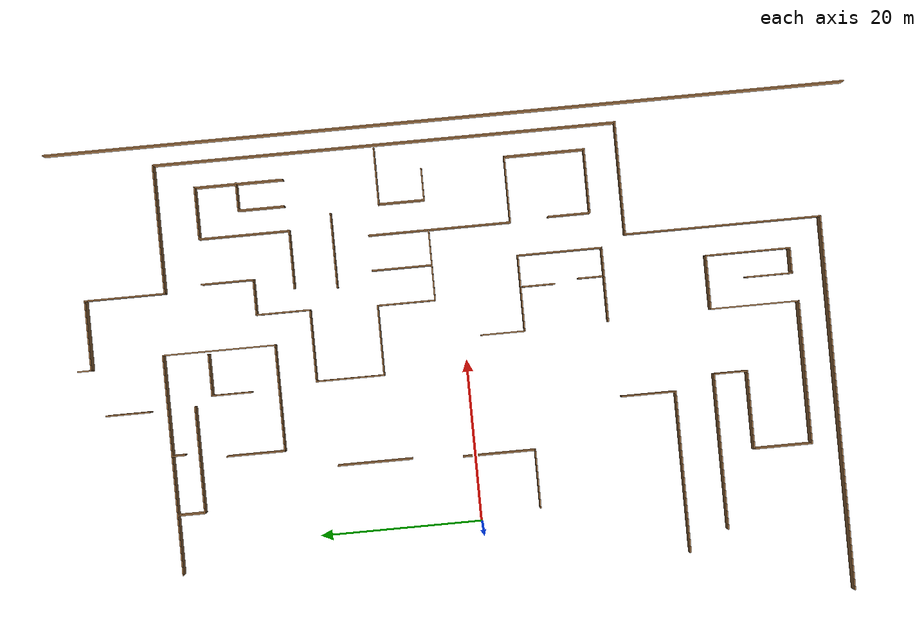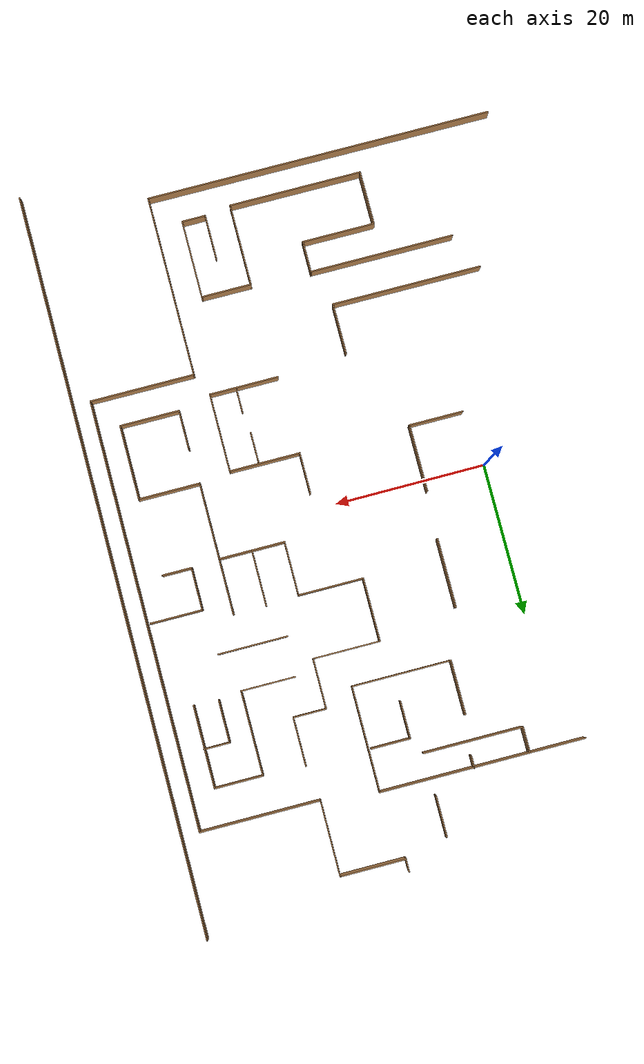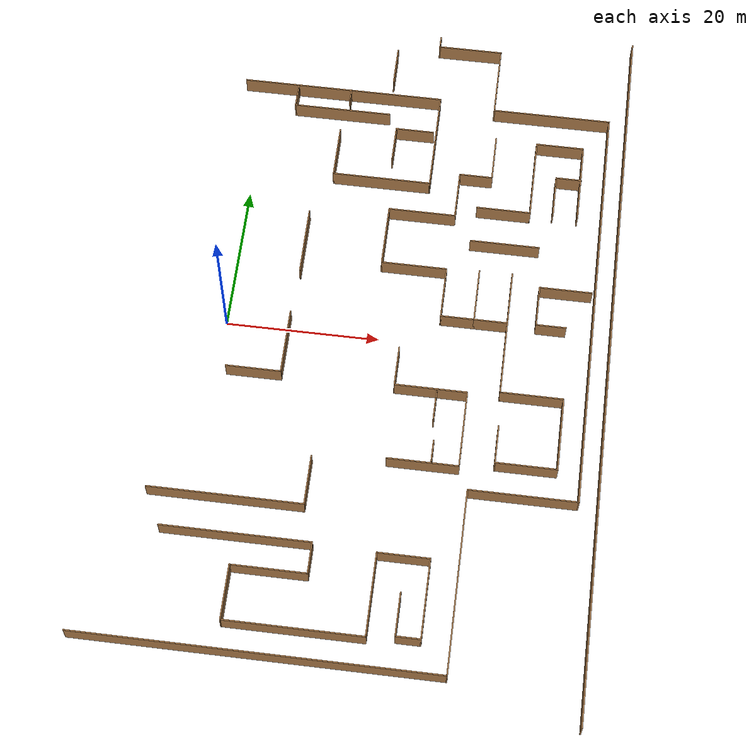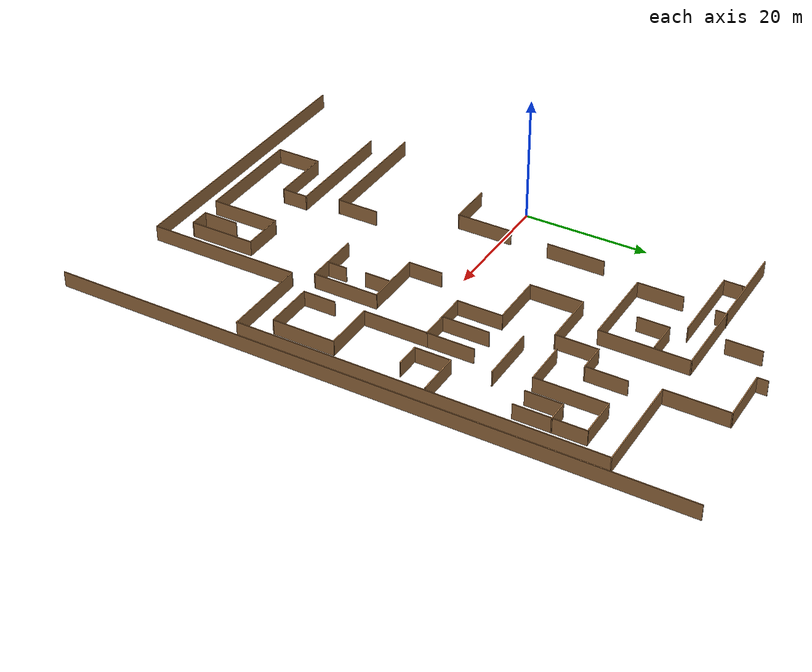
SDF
<sdf version="1.7">
 <model name="model4">
  <pose>0.113714 0.358597 0 0 -0 0</pose>
  <link name="Wall_104">
   <collision name="Wall_104_Collision">
    <geometry><box><size>5.5 0.15 2.5</size></box></geometry>
    <pose>0 0 1.25 0 -0 0</pose>
   </collision>
   <visual name="Wall_104_Visual">
    <pose>0 0 1.25 0 -0 0</pose>
    <geometry><box><size>5.5 0.15 2.5</size></box></geometry>
    <material>
     <script><uri>file://media/materials/scripts/gazebo.material</uri><name>Gazebo/Wood</name></script>
     <ambient>1 1 1 1</ambient>
    </material>
    <meta><layer>0</layer></meta>
   </visual>
   <pose>17.1753 41.7624 0 0 -0 -1.5708</pose>
  </link>
  <link name="Wall_111">
   <collision name="Wall_111_Collision">
    <geometry><box><size>7.25 0.15 2.5</size></box></geometry>
    <pose>0 0 1.25 0 -0 0</pose>
   </collision>
   <visual name="Wall_111_Visual">
    <pose>0 0 1.25 0 -0 0</pose>
    <geometry><box><size>7.25 0.15 2.5</size></box></geometry>
    <material>
     <script><uri>file://media/materials/scripts/gazebo.material</uri><name>Gazebo/Wood</name></script>
     <ambient>1 1 1 1</ambient>
    </material>
    <meta><layer>0</layer></meta>
   </visual>
   <pose>10.8691 26.5423 0 0 -0 -1.5708</pose>
  </link>
  <link name="Wall_112">
   <collision name="Wall_112_Collision">
    <geometry><box><size>13.25 0.15 2.5</size></box></geometry>
    <pose>0 0 1.25 0 -0 0</pose>
   </collision>
   <visual name="Wall_112_Visual">
    <pose>0 0 1.25 0 -0 0</pose>
    <geometry><box><size>13.25 0.15 2.5</size></box></geometry>
    <material>
     <script><uri>file://media/materials/scripts/gazebo.material</uri><name>Gazebo/Wood</name></script>
     <ambient>1 1 1 1</ambient>
    </material>
    <meta><layer>0</layer></meta>
   </visual>
   <pose>17.4191 22.9923 0 0 -0 0</pose>
  </link>
  <link name="Wall_113">
   <collision name="Wall_113_Collision">
    <geometry><box><size>14 0.15 2.5</size></box></geometry>
    <pose>0 0 1.25 0 -0 0</pose>
   </collision>
   <visual name="Wall_113_Visual">
    <pose>0 0 1.25 0 -0 0</pose>
    <geometry><box><size>14 0.15 2.5</size></box></geometry>
    <material>
     <script><uri>file://media/materials/scripts/gazebo.material</uri><name>Gazebo/Wood</name></script>
     <ambient>1 1 1 1</ambient>
    </material>
    <meta><layer>0</layer></meta>
   </visual>
   <pose>23.9691 29.9173 0 0 -0 1.5708</pose>
  </link>
  <link name="Wall_114">
   <collision name="Wall_114_Collision">
    <geometry><box><size>27.25 0.15 2.5</size></box></geometry>
    <pose>0 0 1.25 0 -0 0</pose>
   </collision>
   <visual name="Wall_114_Visual">
    <pose>0 0 1.25 0 -0 0</pose>
    <geometry><box><size>27.25 0.15 2.5</size></box></geometry>
    <material>
     <script><uri>file://media/materials/scripts/gazebo.material</uri><name>Gazebo/Wood</name></script>
     <ambient>1 1 1 1</ambient>
    </material>
    <meta><layer>0</layer></meta>
   </visual>
   <pose>10.4191 36.8423 0 0 -0 3.14159</pose>
  </link>
  <link name="Wall_117">
   <collision name="Wall_117_Collision">
    <geometry><box><size>3 0.15 2.5</size></box></geometry>
    <pose>0 0 1.25 0 -0 0</pose>
   </collision>
   <visual name="Wall_117_Visual">
    <pose>0 0 1.25 0 -0 0</pose>
    <geometry><box><size>3 0.15 2.5</size></box></geometry>
    <material>
     <script><uri>file://media/materials/scripts/gazebo.material</uri><name>Gazebo/Wood</name></script>
     <ambient>1 1 1 1</ambient>
    </material>
    <meta><layer>0</layer></meta>
   </visual>
   <pose>4.18847 34.9191 0 0 -0 -1.5708</pose>
  </link>
  <link name="Wall_118">
   <collision name="Wall_118_Collision">
    <geometry><box><size>13.25 0.15 2.5</size></box></geometry>
    <pose>0 0 1.25 0 -0 0</pose>
   </collision>
   <visual name="Wall_118_Visual">
    <pose>0 0 1.25 0 -0 0</pose>
    <geometry><box><size>13.25 0.15 2.5</size></box></geometry>
    <material>
     <script><uri>file://media/materials/scripts/gazebo.material</uri><name>Gazebo/Wood</name></script>
     <ambient>1 1 1 1</ambient>
    </material>
    <meta><layer>0</layer></meta>
   </visual>
   <pose>10.7385 33.4941 0 0 -0 0</pose>
  </link>
  <link name="Wall_121">
   <collision name="Wall_121_Collision">
    <geometry><box><size>1.75 0.15 2.5</size></box></geometry>
    <pose>0 0 1.25 0 -0 0</pose>
   </collision>
   <visual name="Wall_121_Visual">
    <pose>0 0 1.25 0 -0 0</pose>
    <geometry><box><size>1.75 0.15 2.5</size></box></geometry>
    <material>
     <script><uri>file://media/materials/scripts/gazebo.material</uri><name>Gazebo/Wood</name></script>
     <ambient>1 1 1 1</ambient>
    </material>
    <meta><layer>0</layer></meta>
   </visual>
   <pose>11.5289 36.1088 0 0 -0 -1.5708</pose>
  </link>
  <link name="Wall_123">
   <collision name="Wall_123_Collision">
    <geometry><box><size>0.5 0.15 2.5</size></box></geometry>
    <pose>0 0 1.25 0 -0 0</pose>
   </collision>
   <visual name="Wall_123_Visual">
    <pose>0 0 1.25 0 -0 0</pose>
    <geometry><box><size>0.5 0.15 2.5</size></box></geometry>
    <material>
     <script><uri>file://media/materials/scripts/gazebo.material</uri><name>Gazebo/Wood</name></script>
     <ambient>1 1 1 1</ambient>
    </material>
    <meta><layer>0</layer></meta>
   </visual>
   <pose>4.18847 36.5191 0 0 -0 1.5708</pose>
  </link>
  <link name="Wall_125">
   <collision name="Wall_125_Collision">
    <geometry><box><size>5.25 0.15 2.5</size></box></geometry>
    <pose>0 0 1.25 0 -0 0</pose>
   </collision>
   <visual name="Wall_125_Visual">
    <pose>0 0 1.25 0 -0 0</pose>
    <geometry><box><size>5.25 0.15 2.5</size></box></geometry>
    <material>
     <script><uri>file://media/materials/scripts/gazebo.material</uri><name>Gazebo/Wood</name></script>
     <ambient>1 1 1 1</ambient>
    </material>
    <meta><layer>0</layer></meta>
   </visual>
   <pose>21.0246 31.2623 0 0 -0 3.14159</pose>
  </link>
  <link name="Wall_126">
   <collision name="Wall_126_Collision">
    <geometry><box><size>5 0.15 2.5</size></box></geometry>
    <pose>0 0 1.25 0 -0 0</pose>
   </collision>
   <visual name="Wall_126_Visual">
    <pose>0 0 1.25 0 -0 0</pose>
    <geometry><box><size>5 0.15 2.5</size></box></geometry>
    <material>
     <script><uri>file://media/materials/scripts/gazebo.material</uri><name>Gazebo/Wood</name></script>
     <ambient>1 1 1 1</ambient>
    </material>
    <meta><layer>0</layer></meta>
   </visual>
   <pose>18.4746 28.8373 0 0 -0 -1.5708</pose>
  </link>
  <link name="Wall_143">
   <collision name="Wall_143_Collision">
    <geometry><box><size>19.25 0.15 2.5</size></box></geometry>
    <pose>0 0 1.25 0 -0 0</pose>
   </collision>
   <visual name="Wall_143_Visual">
    <pose>0 0 1.25 0 -0 0</pose>
    <geometry><box><size>19.25 0.15 2.5</size></box></geometry>
    <material>
     <script><uri>file://media/materials/scripts/gazebo.material</uri><name>Gazebo/Wood</name></script>
     <ambient>1 1 1 1</ambient>
    </material>
    <meta><layer>0</layer></meta>
   </visual>
   <pose>5.83343 -30.4723 0 0 -0 0</pose>
  </link>
  <link name="Wall_144">
   <collision name="Wall_144_Collision">
    <geometry><box><size>4.25 0.15 2.5</size></box></geometry>
    <pose>0 0 1.25 0 -0 0</pose>
   </collision>
   <visual name="Wall_144_Visual">
    <pose>0 0 1.25 0 -0 0</pose>
    <geometry><box><size>4.25 0.15 2.5</size></box></geometry>
    <material>
     <script><uri>file://media/materials/scripts/gazebo.material</uri><name>Gazebo/Wood</name></script>
     <ambient>1 1 1 1</ambient>
    </material>
    <meta><layer>0</layer></meta>
   </visual>
   <pose>15.3834 -32.5223 0 0 -0 -1.5708</pose>
  </link>
  <link name="Wall_145">
   <collision name="Wall_145_Collision">
    <geometry><box><size>9.75 0.15 2.5</size></box></geometry>
    <pose>0 0 1.25 0 -0 0</pose>
   </collision>
   <visual name="Wall_145_Visual">
    <pose>0 0 1.25 0 -0 0</pose>
    <geometry><box><size>9.75 0.15 2.5</size></box></geometry>
    <material>
     <script><uri>file://media/materials/scripts/gazebo.material</uri><name>Gazebo/Wood</name></script>
     <ambient>1 1 1 1</ambient>
    </material>
    <meta><layer>0</layer></meta>
   </visual>
   <pose>10.5834 -34.5723 0 0 -0 3.14159</pose>
  </link>
  <link name="Wall_146">
   <collision name="Wall_146_Collision">
    <geometry><box><size>7.25 0.15 2.5</size></box></geometry>
    <pose>0 0 1.25 0 -0 0</pose>
   </collision>
   <visual name="Wall_146_Visual">
    <pose>0 0 1.25 0 -0 0</pose>
    <geometry><box><size>7.25 0.15 2.5</size></box></geometry>
    <material>
     <script><uri>file://media/materials/scripts/gazebo.material</uri><name>Gazebo/Wood</name></script>
     <ambient>1 1 1 1</ambient>
    </material>
    <meta><layer>0</layer></meta>
   </visual>
   <pose>5.78343 -38.1223 0 0 -0 -1.5708</pose>
  </link>
  <link name="Wall_147">
   <collision name="Wall_147_Collision">
    <geometry><box><size>17.75 0.15 2.5</size></box></geometry>
    <pose>0 0 1.25 0 -0 0</pose>
   </collision>
   <visual name="Wall_147_Visual">
    <pose>0 0 1.25 0 -0 0</pose>
    <geometry><box><size>17.75 0.15 2.5</size></box></geometry>
    <material>
     <script><uri>file://media/materials/scripts/gazebo.material</uri><name>Gazebo/Wood</name></script>
     <ambient>1 1 1 1</ambient>
    </material>
    <meta><layer>0</layer></meta>
   </visual>
   <pose>14.5834 -41.6723 0 0 -0 0</pose>
  </link>
  <link name="Wall_148">
   <collision name="Wall_148_Collision">
    <geometry><box><size>11 0.15 2.5</size></box></geometry>
    <pose>0 0 1.25 0 -0 0</pose>
   </collision>
   <visual name="Wall_148_Visual">
    <pose>0 0 1.25 0 -0 0</pose>
    <geometry><box><size>11 0.15 2.5</size></box></geometry>
    <material>
     <script><uri>file://media/materials/scripts/gazebo.material</uri><name>Gazebo/Wood</name></script>
     <ambient>1 1 1 1</ambient>
    </material>
    <meta><layer>0</layer></meta>
   </visual>
   <pose>23.3834 -36.2473 0 0 -0 1.5708</pose>
  </link>
  <link name="Wall_149">
   <collision name="Wall_149_Collision">
    <geometry><box><size>6.75 0.15 2.5</size></box></geometry>
    <pose>0 0 1.25 0 -0 0</pose>
   </collision>
   <visual name="Wall_149_Visual">
    <pose>0 0 1.25 0 -0 0</pose>
    <geometry><box><size>6.75 0.15 2.5</size></box></geometry>
    <material>
     <script><uri>file://media/materials/scripts/gazebo.material</uri><name>Gazebo/Wood</name></script>
     <ambient>1 1 1 1</ambient>
    </material>
    <meta><layer>0</layer></meta>
   </visual>
   <pose>26.6834 -30.8223 0 0 -0 0</pose>
  </link>
  <link name="Wall_150">
   <collision name="Wall_150_Collision">
    <geometry><box><size>10.5 0.15 2.5</size></box></geometry>
    <pose>0 0 1.25 0 -0 0</pose>
   </collision>
   <visual name="Wall_150_Visual">
    <pose>0 0 1.25 0 -0 0</pose>
    <geometry><box><size>10.5 0.15 2.5</size></box></geometry>
    <material>
     <script><uri>file://media/materials/scripts/gazebo.material</uri><name>Gazebo/Wood</name></script>
     <ambient>1 1 1 1</ambient>
    </material>
    <meta><layer>0</layer></meta>
   </visual>
   <pose>29.9834 -35.9973 0 0 -0 -1.5708</pose>
  </link>
  <link name="Wall_151">
   <collision name="Wall_151_Collision">
    <geometry><box><size>3.25 0.15 2.5</size></box></geometry>
    <pose>0 0 1.25 0 -0 0</pose>
   </collision>
   <visual name="Wall_151_Visual">
    <pose>0 0 1.25 0 -0 0</pose>
    <geometry><box><size>3.25 0.15 2.5</size></box></geometry>
    <material>
     <script><uri>file://media/materials/scripts/gazebo.material</uri><name>Gazebo/Wood</name></script>
     <ambient>1 1 1 1</ambient>
    </material>
    <meta><layer>0</layer></meta>
   </visual>
   <pose>28.4334 -41.1723 0 0 -0 3.14159</pose>
  </link>
  <link name="Wall_152">
   <collision name="Wall_152_Collision">
    <geometry><box><size>5.75 0.15 2.5</size></box></geometry>
    <pose>0 0 1.25 0 -0 0</pose>
   </collision>
   <visual name="Wall_152_Visual">
    <pose>0 0 1.25 0 -0 0</pose>
    <geometry><box><size>5.75 0.15 2.5</size></box></geometry>
    <material>
     <script><uri>file://media/materials/scripts/gazebo.material</uri><name>Gazebo/Wood</name></script>
     <ambient>1 1 1 1</ambient>
    </material>
    <meta><layer>0</layer></meta>
   </visual>
   <pose>26.8834 -38.3723 0 0 -0 1.5708</pose>
  </link>
  <link name="Wall_160">
   <collision name="Wall_160_Collision">
    <geometry><box><size>20 0.15 2.5</size></box></geometry>
    <pose>0 0 1.25 0 -0 0</pose>
   </collision>
   <visual name="Wall_160_Visual">
    <pose>0 0 1.25 0 -0 0</pose>
    <geometry><box><size>20 0.15 2.5</size></box></geometry>
    <material>
     <script><uri>file://media/materials/scripts/gazebo.material</uri><name>Gazebo/Wood</name></script>
     <ambient>1 1 1 1</ambient>
    </material>
    <meta><layer>0</layer></meta>
   </visual>
   <pose>3.76164 -25.5787 0 0 -0 0</pose>
  </link>
  <link name="Wall_161">
   <collision name="Wall_161_Collision">
    <geometry><box><size>6.75 0.15 2.5</size></box></geometry>
    <pose>0 0 1.25 0 -0 0</pose>
   </collision>
   <visual name="Wall_161_Visual">
    <pose>0 0 1.25 0 -0 0</pose>
    <geometry><box><size>6.75 0.15 2.5</size></box></geometry>
    <material>
     <script><uri>file://media/materials/scripts/gazebo.material</uri><name>Gazebo/Wood</name></script>
     <ambient>1 1 1 1</ambient>
    </material>
    <meta><layer>0</layer></meta>
   </visual>
   <pose>13.6866 -22.2787 0 0 -0 1.5708</pose>
  </link>
  <link name="Wall_163">
   <collision name="Wall_163_Collision">
    <geometry><box><size>5.5 0.15 2.5</size></box></geometry>
    <pose>0 0 1.25 0 -0 0</pose>
   </collision>
   <visual name="Wall_163_Visual">
    <pose>0 0 1.25 0 -0 0</pose>
    <geometry><box><size>5.5 0.15 2.5</size></box></geometry>
    <material>
     <script><uri>file://media/materials/scripts/gazebo.material</uri><name>Gazebo/Wood</name></script>
     <ambient>1 1 1 1</ambient>
    </material>
    <meta><layer>0</layer></meta>
   </visual>
   <pose>22.8218 -5.10322 0 0 -0 -1.5708</pose>
  </link>
  <link name="Wall_164">
   <collision name="Wall_164_Collision">
    <geometry><box><size>9.5 0.15 2.5</size></box></geometry>
    <pose>0 0 1.25 0 -0 0</pose>
   </collision>
   <visual name="Wall_164_Visual">
    <pose>0 0 1.25 0 -0 0</pose>
    <geometry><box><size>9.5 0.15 2.5</size></box></geometry>
    <material>
     <script><uri>file://media/materials/scripts/gazebo.material</uri><name>Gazebo/Wood</name></script>
     <ambient>1 1 1 1</ambient>
    </material>
    <meta><layer>0</layer></meta>
   </visual>
   <pose>27.4968 -7.77822 0 0 -0 0</pose>
  </link>
  <link name="Wall_165">
   <collision name="Wall_165_Collision">
    <geometry><box><size>10.5 0.15 2.5</size></box></geometry>
    <pose>0 0 1.25 0 -0 0</pose>
   </collision>
   <visual name="Wall_165_Visual">
    <pose>0 0 1.25 0 -0 0</pose>
    <geometry><box><size>10.5 0.15 2.5</size></box></geometry>
    <material>
     <script><uri>file://media/materials/scripts/gazebo.material</uri><name>Gazebo/Wood</name></script>
     <ambient>1 1 1 1</ambient>
    </material>
    <meta><layer>0</layer></meta>
   </visual>
   <pose>32.1718 -12.9532 0 0 -0 -1.5708</pose>
  </link>
  <link name="Wall_166">
   <collision name="Wall_166_Collision">
    <geometry><box><size>9.25 0.15 2.5</size></box></geometry>
    <pose>0 0 1.25 0 -0 0</pose>
   </collision>
   <visual name="Wall_166_Visual">
    <pose>0 0 1.25 0 -0 0</pose>
    <geometry><box><size>9.25 0.15 2.5</size></box></geometry>
    <material>
     <script><uri>file://media/materials/scripts/gazebo.material</uri><name>Gazebo/Wood</name></script>
     <ambient>1 1 1 1</ambient>
    </material>
    <meta><layer>0</layer></meta>
   </visual>
   <pose>27.6218 -18.1282 0 0 -0 3.14159</pose>
  </link>
  <link name="Wall_168">
   <collision name="Wall_168_Collision">
    <geometry><box><size>4 0.15 2.5</size></box></geometry>
    <pose>0 0 1.25 0 -0 0</pose>
   </collision>
   <visual name="Wall_168_Visual">
    <pose>0 0 1.25 0 -0 0</pose>
    <geometry><box><size>4 0.15 2.5</size></box></geometry>
    <material>
     <script><uri>file://media/materials/scripts/gazebo.material</uri><name>Gazebo/Wood</name></script>
     <ambient>1 1 1 1</ambient>
    </material>
    <meta><layer>0</layer></meta>
   </visual>
   <pose>28.28 -9.99968 0 0 -0 -1.5708</pose>
  </link>
  <link name="Wall_170">
   <collision name="Wall_170_Collision">
    <geometry><box><size>3 0.15 2.5</size></box></geometry>
    <pose>0 0 1.25 0 -0 0</pose>
   </collision>
   <visual name="Wall_170_Visual">
    <pose>0 0 1.25 0 -0 0</pose>
    <geometry><box><size>3 0.15 2.5</size></box></geometry>
    <material>
     <script><uri>file://media/materials/scripts/gazebo.material</uri><name>Gazebo/Wood</name></script>
     <ambient>1 1 1 1</ambient>
    </material>
    <meta><layer>0</layer></meta>
   </visual>
   <pose>28.6564 -16.4369 0 0 -0 1.5708</pose>
  </link>
  <link name="Wall_172">
   <collision name="Wall_172_Collision">
    <geometry><box><size>6.5 0.15 2.5</size></box></geometry>
    <pose>0 0 1.25 0 -0 0</pose>
   </collision>
   <visual name="Wall_172_Visual">
    <pose>0 0 1.25 0 -0 0</pose>
    <geometry><box><size>6.5 0.15 2.5</size></box></geometry>
    <material>
     <script><uri>file://media/materials/scripts/gazebo.material</uri><name>Gazebo/Wood</name></script>
     <ambient>1 1 1 1</ambient>
    </material>
    <meta><layer>0</layer></meta>
   </visual>
   <pose>32.2325 28.0873 0 0 -0 -1.5708</pose>
  </link>
  <link name="Wall_173">
   <collision name="Wall_173_Collision">
    <geometry><box><size>4.5 0.15 2.5</size></box></geometry>
    <pose>0 0 1.25 0 -0 0</pose>
   </collision>
   <visual name="Wall_173_Visual">
    <pose>0 0 1.25 0 -0 0</pose>
    <geometry><box><size>4.5 0.15 2.5</size></box></geometry>
    <material>
     <script><uri>file://media/materials/scripts/gazebo.material</uri><name>Gazebo/Wood</name></script>
     <ambient>1 1 1 1</ambient>
    </material>
    <meta><layer>0</layer></meta>
   </visual>
   <pose>30.0575 24.9123 0 0 -0 3.14159</pose>
  </link>
  <link name="Wall_174">
   <collision name="Wall_174_Collision">
    <geometry><box><size>6.75 0.15 2.5</size></box></geometry>
    <pose>0 0 1.25 0 -0 0</pose>
   </collision>
   <visual name="Wall_174_Visual">
    <pose>0 0 1.25 0 -0 0</pose>
    <geometry><box><size>6.75 0.15 2.5</size></box></geometry>
    <material>
     <script><uri>file://media/materials/scripts/gazebo.material</uri><name>Gazebo/Wood</name></script>
     <ambient>1 1 1 1</ambient>
    </material>
    <meta><layer>0</layer></meta>
   </visual>
   <pose>27.8825 21.6123 0 0 -0 -1.5708</pose>
  </link>
  <link name="Wall_175">
   <collision name="Wall_175_Collision">
    <geometry><box><size>9 0.15 2.5</size></box></geometry>
    <pose>0 0 1.25 0 -0 0</pose>
   </collision>
   <visual name="Wall_175_Visual">
    <pose>0 0 1.25 0 -0 0</pose>
    <geometry><box><size>9 0.15 2.5</size></box></geometry>
    <material>
     <script><uri>file://media/materials/scripts/gazebo.material</uri><name>Gazebo/Wood</name></script>
     <ambient>1 1 1 1</ambient>
    </material>
    <meta><layer>0</layer></meta>
   </visual>
   <pose>23.4575 18.3123 0 0 -0 3.14159</pose>
  </link>
  <link name="Wall_176">
   <collision name="Wall_176_Collision">
    <geometry><box><size>8.5 0.15 2.5</size></box></geometry>
    <pose>0 0 1.25 0 -0 0</pose>
   </collision>
   <visual name="Wall_176_Visual">
    <pose>0 0 1.25 0 -0 0</pose>
    <geometry><box><size>8.5 0.15 2.5</size></box></geometry>
    <material>
     <script><uri>file://media/materials/scripts/gazebo.material</uri><name>Gazebo/Wood</name></script>
     <ambient>1 1 1 1</ambient>
    </material>
    <meta><layer>0</layer></meta>
   </visual>
   <pose>19.0325 14.1373 0 0 -0 -1.5708</pose>
  </link>
  <link name="Wall_177">
   <collision name="Wall_177_Collision">
    <geometry><box><size>8.75 0.15 2.5</size></box></geometry>
    <pose>0 0 1.25 0 -0 0</pose>
   </collision>
   <visual name="Wall_177_Visual">
    <pose>0 0 1.25 0 -0 0</pose>
    <geometry><box><size>8.75 0.15 2.5</size></box></geometry>
    <material>
     <script><uri>file://media/materials/scripts/gazebo.material</uri><name>Gazebo/Wood</name></script>
     <ambient>1 1 1 1</ambient>
    </material>
    <meta><layer>0</layer></meta>
   </visual>
   <pose>23.3325 9.9623 0 0 -0 0</pose>
  </link>
  <link name="Wall_178">
   <collision name="Wall_178_Collision">
    <geometry><box><size>7.25 0.15 2.5</size></box></geometry>
    <pose>0 0 1.25 0 -0 0</pose>
   </collision>
   <visual name="Wall_178_Visual">
    <pose>0 0 1.25 0 -0 0</pose>
    <geometry><box><size>7.25 0.15 2.5</size></box></geometry>
    <material>
     <script><uri>file://media/materials/scripts/gazebo.material</uri><name>Gazebo/Wood</name></script>
     <ambient>1 1 1 1</ambient>
    </material>
    <meta><layer>0</layer></meta>
   </visual>
   <pose>27.6325 6.4123 0 0 -0 -1.5708</pose>
  </link>
  <link name="Wall_179">
   <collision name="Wall_179_Collision">
    <geometry><box><size>4.5 0.15 2.5</size></box></geometry>
    <pose>0 0 1.25 0 -0 0</pose>
   </collision>
   <visual name="Wall_179_Visual">
    <pose>0 0 1.25 0 -0 0</pose>
    <geometry><box><size>4.5 0.15 2.5</size></box></geometry>
    <material>
     <script><uri>file://media/materials/scripts/gazebo.material</uri><name>Gazebo/Wood</name></script>
     <ambient>1 1 1 1</ambient>
    </material>
    <meta><layer>0</layer></meta>
   </visual>
   <pose>29.8075 2.8623 0 0 -0 0</pose>
  </link>
  <link name="Wall_180">
   <collision name="Wall_180_Collision">
    <geometry><box><size>7.5 0.15 2.5</size></box></geometry>
    <pose>0 0 1.25 0 -0 0</pose>
   </collision>
   <visual name="Wall_180_Visual">
    <pose>0 0 1.25 0 -0 0</pose>
    <geometry><box><size>7.5 0.15 2.5</size></box></geometry>
    <material>
     <script><uri>file://media/materials/scripts/gazebo.material</uri><name>Gazebo/Wood</name></script>
     <ambient>1 1 1 1</ambient>
    </material>
    <meta><layer>0</layer></meta>
   </visual>
   <pose>31.9825 6.5373 0 0 -0 1.5708</pose>
  </link>
  <link name="Wall_182">
   <collision name="Wall_182_Collision">
    <geometry><box><size>4.5 0.15 2.5</size></box></geometry>
    <pose>0 0 1.25 0 -0 0</pose>
   </collision>
   <visual name="Wall_182_Visual">
    <pose>0 0 1.25 0 -0 0</pose>
    <geometry><box><size>4.5 0.15 2.5</size></box></geometry>
    <material>
     <script><uri>file://media/materials/scripts/gazebo.material</uri><name>Gazebo/Wood</name></script>
     <ambient>1 1 1 1</ambient>
    </material>
    <meta><layer>0</layer></meta>
   </visual>
   <pose>34.1575 2.8623 0 0 -0 0</pose>
  </link>
  <link name="Wall_183">
   <collision name="Wall_183_Collision">
    <geometry><box><size>7.5 0.15 2.5</size></box></geometry>
    <pose>0 0 1.25 0 -0 0</pose>
   </collision>
   <visual name="Wall_183_Visual">
    <pose>0 0 1.25 0 -0 0</pose>
    <geometry><box><size>7.5 0.15 2.5</size></box></geometry>
    <material>
     <script><uri>file://media/materials/scripts/gazebo.material</uri><name>Gazebo/Wood</name></script>
     <ambient>1 1 1 1</ambient>
    </material>
    <meta><layer>0</layer></meta>
   </visual>
   <pose>36.3325 6.5373 0 0 -0 1.5708</pose>
  </link>
  <link name="Wall_185">
   <collision name="Wall_185_Collision">
    <geometry><box><size>10.25 0.15 2.5</size></box></geometry>
    <pose>0 0 1.25 0 -0 0</pose>
   </collision>
   <visual name="Wall_185_Visual">
    <pose>0 0 1.25 0 -0 0</pose>
    <geometry><box><size>10.25 0.15 2.5</size></box></geometry>
    <material>
     <script><uri>file://media/materials/scripts/gazebo.material</uri><name>Gazebo/Wood</name></script>
     <ambient>1 1 1 1</ambient>
    </material>
    <meta><layer>0</layer></meta>
   </visual>
   <pose>36.3325 -2.1877 0 0 -0 -1.5708</pose>
  </link>
  <link name="Wall_186">
   <collision name="Wall_186_Collision">
    <geometry><box><size>8.25 0.15 2.5</size></box></geometry>
    <pose>0 0 1.25 0 -0 0</pose>
   </collision>
   <visual name="Wall_186_Visual">
    <pose>0 0 1.25 0 -0 0</pose>
    <geometry><box><size>8.25 0.15 2.5</size></box></geometry>
    <material>
     <script><uri>file://media/materials/scripts/gazebo.material</uri><name>Gazebo/Wood</name></script>
     <ambient>1 1 1 1</ambient>
    </material>
    <meta><layer>0</layer></meta>
   </visual>
   <pose>40.3825 -7.2377 0 0 -0 0</pose>
  </link>
  <link name="Wall_187">
   <collision name="Wall_187_Collision">
    <geometry><box><size>10 0.15 2.5</size></box></geometry>
    <pose>0 0 1.25 0 -0 0</pose>
   </collision>
   <visual name="Wall_187_Visual">
    <pose>0 0 1.25 0 -0 0</pose>
    <geometry><box><size>10 0.15 2.5</size></box></geometry>
    <material>
     <script><uri>file://media/materials/scripts/gazebo.material</uri><name>Gazebo/Wood</name></script>
     <ambient>1 1 1 1</ambient>
    </material>
    <meta><layer>0</layer></meta>
   </visual>
   <pose>44.4325 -12.1627 0 0 -0 -1.5708</pose>
  </link>
  <link name="Wall_188">
   <collision name="Wall_188_Collision">
    <geometry><box><size>8 0.15 2.5</size></box></geometry>
    <pose>0 0 1.25 0 -0 0</pose>
   </collision>
   <visual name="Wall_188_Visual">
    <pose>0 0 1.25 0 -0 0</pose>
    <geometry><box><size>8 0.15 2.5</size></box></geometry>
    <material>
     <script><uri>file://media/materials/scripts/gazebo.material</uri><name>Gazebo/Wood</name></script>
     <ambient>1 1 1 1</ambient>
    </material>
    <meta><layer>0</layer></meta>
   </visual>
   <pose>40.5075 -17.0877 0 0 -0 3.14159</pose>
  </link>
  <link name="Wall_189">
   <collision name="Wall_189_Collision">
    <geometry><box><size>5.25 0.15 2.5</size></box></geometry>
    <pose>0 0 1.25 0 -0 0</pose>
   </collision>
   <visual name="Wall_189_Visual">
    <pose>0 0 1.25 0 -0 0</pose>
    <geometry><box><size>5.25 0.15 2.5</size></box></geometry>
    <material>
     <script><uri>file://media/materials/scripts/gazebo.material</uri><name>Gazebo/Wood</name></script>
     <ambient>1 1 1 1</ambient>
    </material>
    <meta><layer>0</layer></meta>
   </visual>
   <pose>36.5825 -14.5377 0 0 -0 1.5708</pose>
  </link>
  <link name="Wall_191">
   <collision name="Wall_191_Collision">
    <geometry><box><size>9.25 0.15 2.5</size></box></geometry>
    <pose>0 0 1.25 0 -0 0</pose>
   </collision>
   <visual name="Wall_191_Visual">
    <pose>0 0 1.25 0 -0 0</pose>
    <geometry><box><size>9.25 0.15 2.5</size></box></geometry>
    <material>
     <script><uri>file://media/materials/scripts/gazebo.material</uri><name>Gazebo/Wood</name></script>
     <ambient>1 1 1 1</ambient>
    </material>
    <meta><layer>0</layer></meta>
   </visual>
   <pose>34.9004 14.6994 0 0 -0 0</pose>
  </link>
  <link name="Wall_193">
   <collision name="Wall_193_Collision">
    <geometry><box><size>7.25 0.15 2.5</size></box></geometry>
    <pose>0 0 1.25 0 -0 0</pose>
   </collision>
   <visual name="Wall_193_Visual">
    <pose>0 0 1.25 0 -0 0</pose>
    <geometry><box><size>7.25 0.15 2.5</size></box></geometry>
    <material>
     <script><uri>file://media/materials/scripts/gazebo.material</uri><name>Gazebo/Wood</name></script>
     <ambient>1 1 1 1</ambient>
    </material>
    <meta><layer>0</layer></meta>
   </visual>
   <pose>34.2768 19.9694 0 0 -0 0</pose>
  </link>
  <link name="Wall_194">
   <collision name="Wall_194_Collision">
    <geometry><box><size>11.25 0.15 2.5</size></box></geometry>
    <pose>0 0 1.25 0 -0 0</pose>
   </collision>
   <visual name="Wall_194_Visual">
    <pose>0 0 1.25 0 -0 0</pose>
    <geometry><box><size>11.25 0.15 2.5</size></box></geometry>
    <material>
     <script><uri>file://media/materials/scripts/gazebo.material</uri><name>Gazebo/Wood</name></script>
     <ambient>1 1 1 1</ambient>
    </material>
    <meta><layer>0</layer></meta>
   </visual>
   <pose>37.8268 25.5194 0 0 -0 1.5708</pose>
  </link>
  <link name="Wall_195">
   <collision name="Wall_195_Collision">
    <geometry><box><size>6.5 0.15 2.5</size></box></geometry>
    <pose>0 0 1.25 0 -0 0</pose>
   </collision>
   <visual name="Wall_195_Visual">
    <pose>0 0 1.25 0 -0 0</pose>
    <geometry><box><size>6.5 0.15 2.5</size></box></geometry>
    <material>
     <script><uri>file://media/materials/scripts/gazebo.material</uri><name>Gazebo/Wood</name></script>
     <ambient>1 1 1 1</ambient>
    </material>
    <meta><layer>0</layer></meta>
   </visual>
   <pose>41.0018 31.0694 0 0 -0 0</pose>
  </link>
  <link name="Wall_196">
   <collision name="Wall_196_Collision">
    <geometry><box><size>11 0.15 2.5</size></box></geometry>
    <pose>0 0 1.25 0 -0 0</pose>
   </collision>
   <visual name="Wall_196_Visual">
    <pose>0 0 1.25 0 -0 0</pose>
    <geometry><box><size>11 0.15 2.5</size></box></geometry>
    <material>
     <script><uri>file://media/materials/scripts/gazebo.material</uri><name>Gazebo/Wood</name></script>
     <ambient>1 1 1 1</ambient>
    </material>
    <meta><layer>0</layer></meta>
   </visual>
   <pose>44.1768 25.6444 0 0 -0 -1.5708</pose>
  </link>
  <link name="Wall_198">
   <collision name="Wall_198_Collision">
    <geometry><box><size>5.75 0.15 2.5</size></box></geometry>
    <pose>0 0 1.25 0 -0 0</pose>
   </collision>
   <visual name="Wall_198_Visual">
    <pose>0 0 1.25 0 -0 0</pose>
    <geometry><box><size>5.75 0.15 2.5</size></box></geometry>
    <material>
     <script><uri>file://media/materials/scripts/gazebo.material</uri><name>Gazebo/Wood</name></script>
     <ambient>1 1 1 1</ambient>
    </material>
    <meta><layer>0</layer></meta>
   </visual>
   <pose>40.8904 23.1458 0 0 -0 1.5708</pose>
  </link>
  <link name="Wall_199">
   <collision name="Wall_199_Collision">
    <geometry><box><size>3.5 0.15 2.5</size></box></geometry>
    <pose>0 0 1.25 0 -0 0</pose>
   </collision>
   <visual name="Wall_199_Visual">
    <pose>0 0 1.25 0 -0 0</pose>
    <geometry><box><size>3.5 0.15 2.5</size></box></geometry>
    <material>
     <script><uri>file://media/materials/scripts/gazebo.material</uri><name>Gazebo/Wood</name></script>
     <ambient>1 1 1 1</ambient>
    </material>
    <meta><layer>0</layer></meta>
   </visual>
   <pose>42.5654 25.9458 0 0 -0 0</pose>
  </link>
  <link name="Wall_201">
   <collision name="Wall_201_Collision">
    <geometry><box><size>7 0.15 2.5</size></box></geometry>
    <pose>0 0 1.25 0 -0 0</pose>
   </collision>
   <visual name="Wall_201_Visual">
    <pose>0 0 1.25 0 -0 0</pose>
    <geometry><box><size>7 0.15 2.5</size></box></geometry>
    <material>
     <script><uri>file://media/materials/scripts/gazebo.material</uri><name>Gazebo/Wood</name></script>
     <ambient>1 1 1 1</ambient>
    </material>
    <meta><layer>0</layer></meta>
   </visual>
   <pose>43.4883 8.67648 0 0 -0 3.14159</pose>
  </link>
  <link name="Wall_202">
   <collision name="Wall_202_Collision">
    <geometry><box><size>5.75 0.15 2.5</size></box></geometry>
    <pose>0 0 1.25 0 -0 0</pose>
   </collision>
   <visual name="Wall_202_Visual">
    <pose>0 0 1.25 0 -0 0</pose>
    <geometry><box><size>5.75 0.15 2.5</size></box></geometry>
    <material>
     <script><uri>file://media/materials/scripts/gazebo.material</uri><name>Gazebo/Wood</name></script>
     <ambient>1 1 1 1</ambient>
    </material>
    <meta><layer>0</layer></meta>
   </visual>
   <pose>40.0633 5.87648 0 0 -0 -1.5708</pose>
  </link>
  <link name="Wall_203">
   <collision name="Wall_203_Collision">
    <geometry><box><size>4 0.15 2.5</size></box></geometry>
    <pose>0 0 1.25 0 -0 0</pose>
   </collision>
   <visual name="Wall_203_Visual">
    <pose>0 0 1.25 0 -0 0</pose>
    <geometry><box><size>4 0.15 2.5</size></box></geometry>
    <material>
     <script><uri>file://media/materials/scripts/gazebo.material</uri><name>Gazebo/Wood</name></script>
     <ambient>1 1 1 1</ambient>
    </material>
    <meta><layer>0</layer></meta>
   </visual>
   <pose>41.9883 3.07647 0 0 -0 0</pose>
  </link>
  <link name="Wall_26">
   <collision name="Wall_26_Collision">
    <geometry><box><size>99 0.15 2.5</size></box></geometry>
    <pose>0 0 1.25 0 -0 0</pose>
   </collision>
   <visual name="Wall_26_Visual">
    <pose>0 0 1.25 0 -0 0</pose>
    <geometry><box><size>99 0.15 2.5</size></box></geometry>
    <material>
     <script><uri>file://media/materials/scripts/gazebo.material</uri><name>Gazebo/Wood</name></script>
     <ambient>1 1 1 1</ambient>
    </material>
    <meta><layer>0</layer></meta>
   </visual>
   <pose>49.8247 -0.176663 0 0 -0 1.5708</pose>
  </link>
  <link name="Wall_35">
   <collision name="Wall_35_Collision">
    <geometry><box><size>46.25 0.15 2.5</size></box></geometry>
    <pose>0 0 1.25 0 -0 0</pose>
   </collision>
   <visual name="Wall_35_Visual">
    <pose>0 0 1.25 0 -0 0</pose>
    <geometry><box><size>46.25 0.15 2.5</size></box></geometry>
    <material>
     <script><uri>file://media/materials/scripts/gazebo.material</uri><name>Gazebo/Wood</name></script>
     <ambient>1 1 1 1</ambient>
    </material>
    <meta><layer>0</layer></meta>
   </visual>
   <pose>10.4888 -45.2727 0 0 -0 0</pose>
  </link>
  <link name="Wall_36">
   <collision name="Wall_36_Collision">
    <geometry><box><size>24.25 0.15 2.5</size></box></geometry>
    <pose>0 0 1.25 0 -0 0</pose>
   </collision>
   <visual name="Wall_36_Visual">
    <pose>0 0 1.25 0 -0 0</pose>
    <geometry><box><size>24.25 0.15 2.5</size></box></geometry>
    <material>
     <script><uri>file://media/materials/scripts/gazebo.material</uri><name>Gazebo/Wood</name></script>
     <ambient>1 1 1 1</ambient>
    </material>
    <meta><layer>0</layer></meta>
   </visual>
   <pose>33.5388 -33.2227 0 0 -0 1.5708</pose>
  </link>
  <link name="Wall_37">
   <collision name="Wall_37_Collision">
    <geometry><box><size>14 0.15 2.5</size></box></geometry>
    <pose>0 0 1.25 0 -0 0</pose>
   </collision>
   <visual name="Wall_37_Visual">
    <pose>0 0 1.25 0 -0 0</pose>
    <geometry><box><size>14 0.15 2.5</size></box></geometry>
    <material>
     <script><uri>file://media/materials/scripts/gazebo.material</uri><name>Gazebo/Wood</name></script>
     <ambient>1 1 1 1</ambient>
    </material>
    <meta><layer>0</layer></meta>
   </visual>
   <pose>40.4638 -21.1727 0 0 -0 0</pose>
  </link>
  <link name="Wall_38">
   <collision name="Wall_38_Collision">
    <geometry><box><size>57.25 0.15 2.5</size></box></geometry>
    <pose>0 0 1.25 0 -0 0</pose>
   </collision>
   <visual name="Wall_38_Visual">
    <pose>0 0 1.25 0 -0 0</pose>
    <geometry><box><size>57.25 0.15 2.5</size></box></geometry>
    <material>
     <script><uri>file://media/materials/scripts/gazebo.material</uri><name>Gazebo/Wood</name></script>
     <ambient>1 1 1 1</ambient>
    </material>
    <meta><layer>0</layer></meta>
   </visual>
   <pose>47.3888 7.37726 0 0 -0 1.5708</pose>
  </link>
  <link name="Wall_39">
   <collision name="Wall_39_Collision">
    <geometry><box><size>16 0.15 2.5</size></box></geometry>
    <pose>0 0 1.25 0 -0 0</pose>
   </collision>
   <visual name="Wall_39_Visual">
    <pose>0 0 1.25 0 -0 0</pose>
    <geometry><box><size>16 0.15 2.5</size></box></geometry>
    <material>
     <script><uri>file://media/materials/scripts/gazebo.material</uri><name>Gazebo/Wood</name></script>
     <ambient>1 1 1 1</ambient>
    </material>
    <meta><layer>0</layer></meta>
   </visual>
   <pose>39.4638 35.9273 0 0 -0 3.14159</pose>
  </link>
  <link name="Wall_41">
   <collision name="Wall_41_Collision">
    <geometry><box><size>10 0.15 2.5</size></box></geometry>
    <pose>0 0 1.25 0 -0 0</pose>
   </collision>
   <visual name="Wall_41_Visual">
    <pose>0 0 1.25 0 -0 0</pose>
    <geometry><box><size>10 0.15 2.5</size></box></geometry>
    <material>
     <script><uri>file://media/materials/scripts/gazebo.material</uri><name>Gazebo/Wood</name></script>
     <ambient>1 1 1 1</ambient>
    </material>
    <meta><layer>0</layer></meta>
   </visual>
   <pose>31.5388 40.8523 0 0 -0 1.5708</pose>
  </link>
  <link name="Wall_42">
   <collision name="Wall_42_Collision">
    <geometry><box><size>8.75 0.15 2.5</size></box></geometry>
    <pose>0 0 1.25 0 -0 0</pose>
   </collision>
   <visual name="Wall_42_Visual">
    <pose>0 0 1.25 0 -0 0</pose>
    <geometry><box><size>8.75 0.15 2.5</size></box></geometry>
    <material>
     <script><uri>file://media/materials/scripts/gazebo.material</uri><name>Gazebo/Wood</name></script>
     <ambient>1 1 1 1</ambient>
    </material>
    <meta><layer>0</layer></meta>
   </visual>
   <pose>27.2388 45.7773 0 0 -0 3.14159</pose>
  </link>
  <link name="Wall_43">
   <collision name="Wall_43_Collision">
    <geometry><box><size>1.75 0.15 2.5</size></box></geometry>
    <pose>0 0 1.25 0 -0 0</pose>
   </collision>
   <visual name="Wall_43_Visual">
    <pose>0 0 1.25 0 -0 0</pose>
    <geometry><box><size>1.75 0.15 2.5</size></box></geometry>
    <material>
     <script><uri>file://media/materials/scripts/gazebo.material</uri><name>Gazebo/Wood</name></script>
     <ambient>1 1 1 1</ambient>
    </material>
    <meta><layer>0</layer></meta>
   </visual>
   <pose>22.9388 46.5773 0 0 -0 1.5708</pose>
  </link>
  <link name="Wall_56">
   <collision name="Wall_56_Collision">
    <geometry><box><size>9.25 0.15 2.5</size></box></geometry>
    <pose>0 0 1.25 0 -0 0</pose>
   </collision>
   <visual name="Wall_56_Visual">
    <pose>0 0 1.25 0 -0 0</pose>
    <geometry><box><size>9.25 0.15 2.5</size></box></geometry>
    <material>
     <script><uri>file://media/materials/scripts/gazebo.material</uri><name>Gazebo/Wood</name></script>
     <ambient>1 1 1 1</ambient>
    </material>
    <meta><layer>0</layer></meta>
   </visual>
   <pose>8.47267 12.0325 0 0 -0 -1.5708</pose>
  </link>
  <link name="Wall_62">
   <collision name="Wall_62_Collision">
    <geometry><box><size>9 0.15 2.5</size></box></geometry>
    <pose>0 0 1.25 0 -0 0</pose>
   </collision>
   <visual name="Wall_62_Visual">
    <pose>0 0 1.25 0 -0 0</pose>
    <geometry><box><size>9 0.15 2.5</size></box></geometry>
    <material>
     <script><uri>file://media/materials/scripts/gazebo.material</uri><name>Gazebo/Wood</name></script>
     <ambient>1 1 1 1</ambient>
    </material>
    <meta><layer>0</layer></meta>
   </visual>
   <pose>8.14099 -3.27713 0 0 -0 -1.5708</pose>
  </link>
  <link name="Wall_63">
   <collision name="Wall_63_Collision">
    <geometry><box><size>7.25 0.15 2.5</size></box></geometry>
    <pose>0 0 1.25 0 -0 0</pose>
   </collision>
   <visual name="Wall_63_Visual">
    <pose>0 0 1.25 0 -0 0</pose>
    <geometry><box><size>7.25 0.15 2.5</size></box></geometry>
    <material>
     <script><uri>file://media/materials/scripts/gazebo.material</uri><name>Gazebo/Wood</name></script>
     <ambient>1 1 1 1</ambient>
    </material>
    <meta><layer>0</layer></meta>
   </visual>
   <pose>4.59099 -7.70213 0 0 -0 3.14159</pose>
  </link>
  <static>1</static>
 </model>
</sdf>
